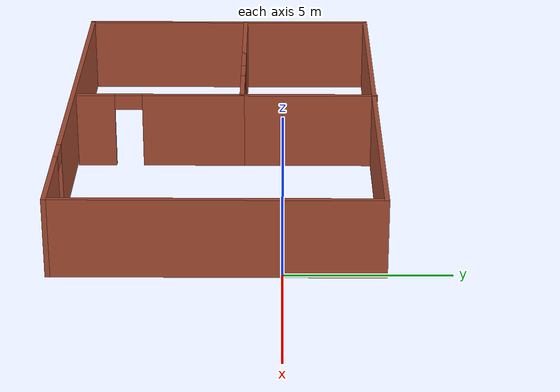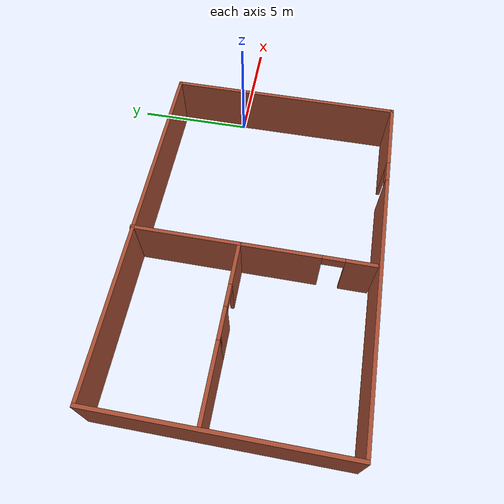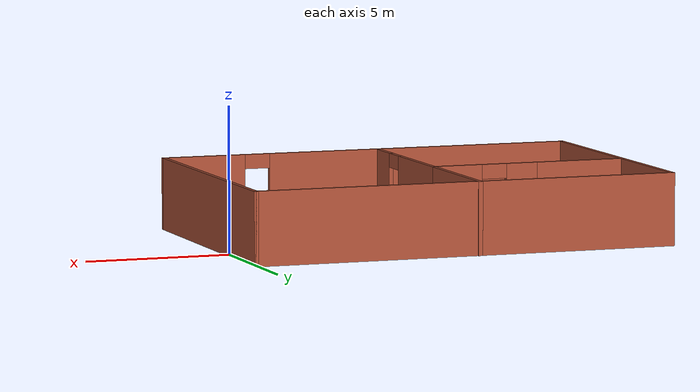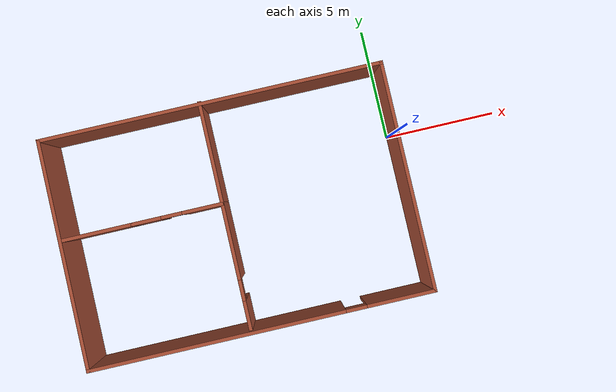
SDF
<?xml version='1.0'?>
<sdf version='1.7'>
  <model name='Buinding_model2'>
    <pose>-7.35053 -1.91088 0 0 -0 0</pose>
    <link name='Wall_0'>
      <collision name='Wall_0_Collision'>
        <geometry>
          <box>
            <size>10 0.15 2.5</size>
          </box>
        </geometry>
        <pose>0 0 1.25 0 -0 0</pose>
      </collision>
      <visual name='Wall_0_Visual'>
        <pose>0 0 1.25 0 -0 0</pose>
        <geometry>
          <box>
            <size>10 0.15 2.5</size>
          </box>
        </geometry>
        <material>
          <script>
            <uri>file://media/materials/scripts/gazebo.material</uri>
            <name>Gazebo/Bricks</name>
          </script>
          <ambient>1 1 1 1</ambient>
        </material>
        <meta>
          <layer>0</layer>
        </meta>
      </visual>
      <pose>-7.425 -0.01921 0 0 -0 1.5708</pose>
    </link>
    <link name='Wall_1'>
      <collision name='Wall_1_Collision'>
        <geometry>
          <box>
            <size>15 0.15 2.5</size>
          </box>
        </geometry>
        <pose>0 0 1.25 0 -0 0</pose>
      </collision>
      <visual name='Wall_1_Visual'>
        <pose>0 0 1.25 0 -0 0</pose>
        <geometry>
          <box>
            <size>15 0.15 2.5</size>
          </box>
        </geometry>
        <material>
          <script>
            <uri>file://media/materials/scripts/gazebo.material</uri>
            <name>Gazebo/Bricks</name>
          </script>
          <ambient>1 1 1 1</ambient>
        </material>
        <meta>
          <layer>0</layer>
        </meta>
      </visual>
      <pose>0 4.90579 0 0 -0 0</pose>
    </link>
    <link name='Wall_2'>
      <collision name='Wall_2_Collision'>
        <geometry>
          <box>
            <size>10 0.15 2.5</size>
          </box>
        </geometry>
        <pose>0 0 1.25 0 -0 0</pose>
      </collision>
      <visual name='Wall_2_Visual'>
        <pose>0 0 1.25 0 -0 0</pose>
        <geometry>
          <box>
            <size>10 0.15 2.5</size>
          </box>
        </geometry>
        <material>
          <script>
            <uri>file://media/materials/scripts/gazebo.material</uri>
            <name>Gazebo/Bricks</name>
          </script>
          <ambient>1 1 1 1</ambient>
        </material>
        <meta>
          <layer>0</layer>
        </meta>
      </visual>
      <pose>7.425 -0.01921 0 0 -0 -1.5708</pose>
    </link>
    <link name='Wall_3'>
      <pose>0 -4.94421 0 0 -0 3.14159</pose>
      <visual name='Wall_3_Visual_0'>
        <pose>-6.00037 0 1.25 0 -0 0</pose>
        <geometry>
          <box>
            <size>2.99925 0.15 2.5</size>
          </box>
        </geometry>
        <material>
          <script>
            <uri>file://media/materials/scripts/gazebo.material</uri>
            <name>Gazebo/Bricks</name>
          </script>
          <ambient>1 1 1 1</ambient>
        </material>
        <meta>
          <layer>0</layer>
        </meta>
      </visual>
      <collision name='Wall_3_Collision_0'>
        <geometry>
          <box>
            <size>2.99925 0.15 2.5</size>
          </box>
        </geometry>
        <pose>-6.00037 0 1.25 0 -0 0</pose>
      </collision>
      <visual name='Wall_3_Visual_1'>
        <pose>1.94963 0 1.25 0 -0 0</pose>
        <geometry>
          <box>
            <size>11.1007 0.15 2.5</size>
          </box>
        </geometry>
        <material>
          <script>
            <uri>file://media/materials/scripts/gazebo.material</uri>
            <name>Gazebo/Bricks</name>
          </script>
          <ambient>1 1 1 1</ambient>
        </material>
        <meta>
          <layer>0</layer>
        </meta>
      </visual>
      <collision name='Wall_3_Collision_1'>
        <geometry>
          <box>
            <size>11.1007 0.15 2.5</size>
          </box>
        </geometry>
        <pose>1.94963 0 1.25 0 -0 0</pose>
      </collision>
      <visual name='Wall_3_Visual_2'>
        <pose>-4.05075 0 2.25 0 -0 0</pose>
        <geometry>
          <box>
            <size>0.9 0.15 0.5</size>
          </box>
        </geometry>
        <material>
          <script>
            <uri>file://media/materials/scripts/gazebo.material</uri>
            <name>Gazebo/Bricks</name>
          </script>
          <ambient>1 1 1 1</ambient>
        </material>
        <meta>
          <layer>0</layer>
        </meta>
      </visual>
      <collision name='Wall_3_Collision_2'>
        <geometry>
          <box>
            <size>0.9 0.15 0.5</size>
          </box>
        </geometry>
        <pose>-4.05075 0 2.25 0 -0 0</pose>
      </collision>
    </link>
    <link name='Wall_5'>
      <collision name='Wall_5_Collision'>
        <geometry>
          <box>
            <size>3.25 0.15 2.5</size>
          </box>
        </geometry>
        <pose>0 0 1.25 0 -0 0</pose>
      </collision>
      <visual name='Wall_5_Visual'>
        <pose>0 0 1.25 0 -0 0</pose>
        <geometry>
          <box>
            <size>3.25 0.15 2.5</size>
          </box>
        </geometry>
        <material>
          <script>
            <uri>file://media/materials/scripts/gazebo.material</uri>
            <name>Gazebo/Bricks</name>
          </script>
          <ambient>1 1 1 1</ambient>
        </material>
        <meta>
          <layer>0</layer>
        </meta>
      </visual>
      <pose>-5.84879 0.59421 0 0 -0 0</pose>
    </link>
    <link name='Wall_6'>
      <pose>-2.37379 0.59421 0 0 -0 0</pose>
      <visual name='Wall_6_Visual_0'>
        <pose>-1.35664 0 1.25 0 -0 0</pose>
        <geometry>
          <box>
            <size>1.28672 0.15 2.5</size>
          </box>
        </geometry>
        <material>
          <script>
            <uri>file://media/materials/scripts/gazebo.material</uri>
            <name>Gazebo/Bricks</name>
          </script>
          <ambient>1 1 1 1</ambient>
        </material>
        <meta>
          <layer>0</layer>
        </meta>
      </visual>
      <collision name='Wall_6_Collision_0'>
        <geometry>
          <box>
            <size>1.28672 0.15 2.5</size>
          </box>
        </geometry>
        <pose>-1.35664 0 1.25 0 -0 0</pose>
      </collision>
      <visual name='Wall_6_Visual_1'>
        <pose>1.09336 0 1.25 0 -0 0</pose>
        <geometry>
          <box>
            <size>1.81328 0.15 2.5</size>
          </box>
        </geometry>
        <material>
          <script>
            <uri>file://media/materials/scripts/gazebo.material</uri>
            <name>Gazebo/Bricks</name>
          </script>
          <ambient>1 1 1 1</ambient>
        </material>
        <meta>
          <layer>0</layer>
        </meta>
      </visual>
      <collision name='Wall_6_Collision_1'>
        <geometry>
          <box>
            <size>1.81328 0.15 2.5</size>
          </box>
        </geometry>
        <pose>1.09336 0 1.25 0 -0 0</pose>
      </collision>
      <visual name='Wall_6_Visual_2'>
        <pose>-0.263277 0 2.25 0 -0 0</pose>
        <geometry>
          <box>
            <size>0.9 0.15 0.5</size>
          </box>
        </geometry>
        <material>
          <script>
            <uri>file://media/materials/scripts/gazebo.material</uri>
            <name>Gazebo/Bricks</name>
          </script>
          <ambient>1 1 1 1</ambient>
        </material>
        <meta>
          <layer>0</layer>
        </meta>
      </visual>
      <collision name='Wall_6_Collision_2'>
        <geometry>
          <box>
            <size>0.9 0.15 0.5</size>
          </box>
        </geometry>
        <pose>-0.263277 0 2.25 0 -0 0</pose>
      </collision>
    </link>
    <link name='Wall_7'>
      <collision name='Wall_7_Collision'>
        <geometry>
          <box>
            <size>4.5 0.15 2.5</size>
          </box>
        </geometry>
        <pose>0 0 1.25 0 -0 0</pose>
      </collision>
      <visual name='Wall_7_Visual'>
        <pose>0 0 1.25 0 -0 0</pose>
        <geometry>
          <box>
            <size>4.5 0.15 2.5</size>
          </box>
        </geometry>
        <material>
          <script>
            <uri>file://media/materials/scripts/gazebo.material</uri>
            <name>Gazebo/Bricks</name>
          </script>
          <ambient>1 1 1 1</ambient>
        </material>
        <meta>
          <layer>0</layer>
        </meta>
      </visual>
      <pose>-0.44879 2.76921 0 0 -0 1.5708</pose>
    </link>
    <link name='Wall_9'>
      <pose>-0.44879 -2.08079 0 0 -0 -1.5708</pose>
      <visual name='Wall_9_Visual_0'>
        <pose>-1.07829 0 1.25 0 -0 0</pose>
        <geometry>
          <box>
            <size>3.34342 0.15 2.5</size>
          </box>
        </geometry>
        <material>
          <script>
            <uri>file://media/materials/scripts/gazebo.material</uri>
            <name>Gazebo/Bricks</name>
          </script>
          <ambient>1 1 1 1</ambient>
        </material>
        <meta>
          <layer>0</layer>
        </meta>
      </visual>
      <collision name='Wall_9_Collision_0'>
        <geometry>
          <box>
            <size>3.34342 0.15 2.5</size>
          </box>
        </geometry>
        <pose>-1.07829 0 1.25 0 -0 0</pose>
      </collision>
      <visual name='Wall_9_Visual_1'>
        <pose>2.12171 0 1.25 0 -0 0</pose>
        <geometry>
          <box>
            <size>1.25658 0.15 2.5</size>
          </box>
        </geometry>
        <material>
          <script>
            <uri>file://media/materials/scripts/gazebo.material</uri>
            <name>Gazebo/Bricks</name>
          </script>
          <ambient>1 1 1 1</ambient>
        </material>
        <meta>
          <layer>0</layer>
        </meta>
      </visual>
      <collision name='Wall_9_Collision_1'>
        <geometry>
          <box>
            <size>1.25658 0.15 2.5</size>
          </box>
        </geometry>
        <pose>2.12171 0 1.25 0 -0 0</pose>
      </collision>
      <visual name='Wall_9_Visual_2'>
        <pose>1.04342 0 2.25 0 -0 0</pose>
        <geometry>
          <box>
            <size>0.9 0.15 0.5</size>
          </box>
        </geometry>
        <material>
          <script>
            <uri>file://media/materials/scripts/gazebo.material</uri>
            <name>Gazebo/Bricks</name>
          </script>
          <ambient>1 1 1 1</ambient>
        </material>
        <meta>
          <layer>0</layer>
        </meta>
      </visual>
      <collision name='Wall_9_Collision_2'>
        <geometry>
          <box>
            <size>0.9 0.15 0.5</size>
          </box>
        </geometry>
        <pose>1.04342 0 2.25 0 -0 0</pose>
      </collision>
    </link>
    <static>1</static>
  </model>
</sdf>
